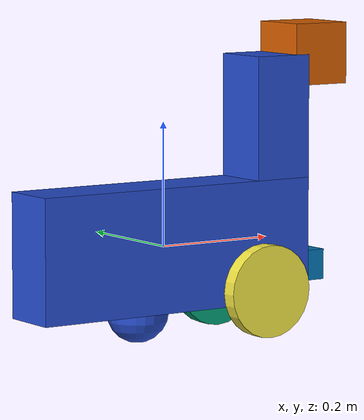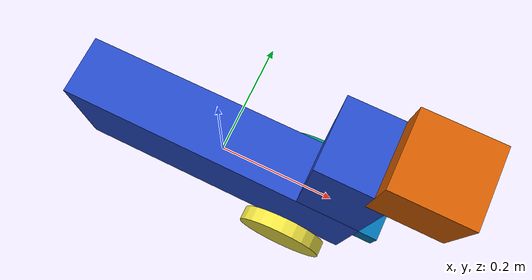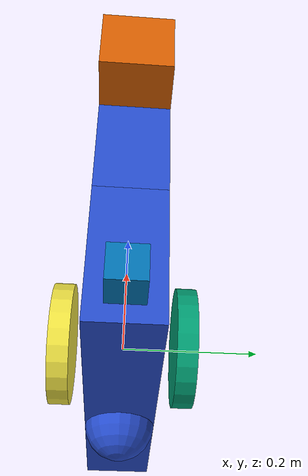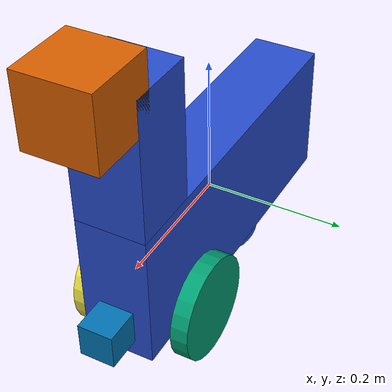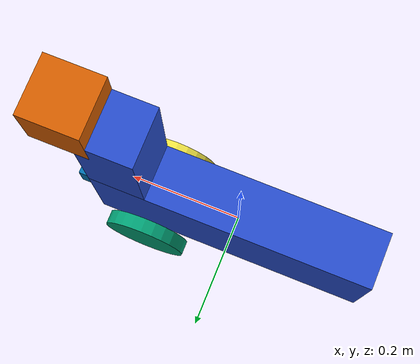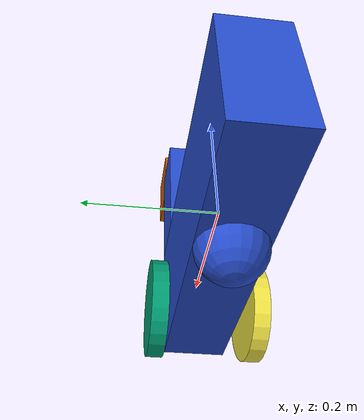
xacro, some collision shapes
<?xml version='1.0'?>

<robot name="my_robot" xmlns:xacro="http://www.ros.org/wiki/xacro">

  <xacro:include filename="$(find my_robot)/urdf/my_robot.gazebo" />

  <link name="robot_footprint"></link>

  <joint name="robot_footprint_joint" type="fixed">
    <origin xyz="0 0 0" rpy="0 0 0" />
    <parent link="robot_footprint"/>
    <child link="chassis" />
  </joint>

  <link name='chassis'>

    <pose>0 0 0.2 0 0 0</pose>

    <inertial>
      <mass value="15.0"/>
      <origin xyz="0.0 0 0" rpy="0 0 0"/>
      <inertia
          ixx="0.1" ixy="0" ixz="0"
          iyy="0.1" iyz="0"
          izz="0.1"
      />
    </inertial>

    <collision name='chassis_collision'>
      <origin xyz="0 0 0" rpy="0 0 0"/>
      <geometry>
        <box size=".5 .1 .2"/>
      </geometry>
    </collision>

    <visual name='chassis_visual'>
      <origin xyz="0 0 0" rpy="0 0 0"/>
      <geometry>
        <box size=".5 .1 .2"/>
      </geometry>
    </visual>

    <collision name='tower_collision'>
      <origin xyz=".2 0 .2" rpy="0 0 0"/>
      <geometry>
        <box size=".1 .1 .2"/>
      </geometry>
    </collision>

    <visual name='tower_visual'>
      <origin xyz=".2 0 .2" rpy="0 0 0"/>
      <geometry>
        <box size=".1 .1 .2"/>
      </geometry>
    </visual>

    <collision name='back_caster_collision'>
      <origin xyz="-0.05 0 -0.1" rpy="0 0 0"/>
      <geometry>
        <sphere radius="0.0499"/>
      </geometry>
    </collision>

    <visual name='back_caster_visual'>
      <origin xyz="-0.05 0 -0.1" rpy="0 0 0"/>
      <geometry>
        <sphere radius="0.05"/>
      </geometry>
    </visual>

  </link>

  <link name='left_wheel'>

    <inertial>
      <mass value="5.0"/>
      <origin xyz="0.0 0 0" rpy="0 1.5707 1.5707"/>
      <inertia
          ixx="0.1" ixy="0" ixz="0"
          iyy="0.1" iyz="0"
          izz="0.1"
      />
    </inertial>

    <collision name='left_wheel_collision'>
      <origin xyz="0 0 0" rpy="0 1.5707 1.5707"/>
      <geometry>
        <cylinder radius=".075" length=".025"/>
      </geometry>
    </collision>

    <visual name='left_wheel_visual'>
      <origin xyz="0 0 0" rpy="0 1.5707 1.5707"/>
      <geometry>
        <cylinder radius=".075" length=".025"/>
      </geometry>
    </visual>

  </link>

  <link name='right_wheel'>

    <inertial>
      <mass value="5.0"/>
      <origin xyz="0.0 0 0" rpy="0 1.5707 1.5707"/>
      <inertia
          ixx="0.1" ixy="0" ixz="0"
          iyy="0.1" iyz="0"
          izz="0.1"
      />
    </inertial>

    <collision name='right_wheel_collision'>
      <origin xyz="0 0 0" rpy="0 1.5707 1.5707"/>
      <geometry>
        <cylinder radius=".075" length=".025"/>
      </geometry>
    </collision>

    <visual name='right_wheel_visual'>
      <origin xyz="0 0 0" rpy=" 0 1.5707 1.5707"/>
      <geometry>
        <cylinder radius=".075" length=".025"/>
      </geometry>
    </visual>

  </link>

  <joint type="continuous" name="left_wheel_hinge">

    <origin xyz="0.15 0.075 -0.075" rpy="0 0 0"/>
    <child link="left_wheel"/>
    <parent link="chassis"/>
    <axis xyz="0 1 0" rpy="0 0 0"/>
    <limit effort="10000" velocity="1000"/>
    <dynamics damping="1.0" friction="1.0"/>

  </joint>

  <joint type="continuous" name="right_wheel_hinge">

    <origin xyz="0.15 -0.075 -.075" rpy="0 0 0"/>
    <child link="right_wheel"/>
    <parent link="chassis"/>
    <axis xyz="0 1 0" rpy="0 0 0"/>
    <limit effort="10000" velocity="1000"/>
    <dynamics damping="1.0" friction="1.0"/>

  </joint>

  <link name='camera'>

    <box_inertia m="0.1" w="0.05" h="0.05" d="0.05"/>

    <inertial>
      <mass value="0.1"/>
      <origin xyz="0 0 0" rpy="0 0 0"/>
      <inertia
          ixx="1e-6" ixy="0" ixz="0"
          iyy="1e-6" iyz="0"
          izz="1e-6"
      />
    </inertial>

    <collision name='camera_collision'>
      <origin xyz="0 0 0" rpy="0 0 0"/>
      <geometry>
        <box size=".05 .05 .05"/>
      </geometry>
    </collision>

    <visual name='camera_visual'>
      <origin xyz="0 0 0" rpy="0 0 0"/>
      <geometry>
        <box size=".05 .05 .05"/>
      </geometry>
    </visual>

  </link>

  <joint type="fixed" name="camera_joint">

    <origin xyz="0.275 0 -.05" rpy="0 0 0"/>
    <child link="camera"/>
    <parent link="chassis"/>
    <axis xyz="0 1 0"/>

  </joint>

  <link name='hokuyo'>

    <inertial>
      <mass value="1e-5"/>
      <origin xyz="0 0 0" rpy="0 0 0"/>
      <inertia
          ixx="1e-6" ixy="0" ixz="0"
          iyy="1e-6" iyz="0"
          izz="1e-6"
      />
    </inertial>

    <collision name='hokuyo_collision'>
      <origin xyz="0 0 0" rpy="0 0 0"/>
      <geometry>
        <box size=".1 .1 .1"/>
      </geometry>
    </collision>

    <visual name='hokuyo_visual'>
      <origin xyz="0 0 0" rpy="0 0 0"/>
      <geometry>
        <mesh filename="package://my_robot/meshes/hokuyo.dae"/>
      </geometry>
    </visual>

  </link>

  <joint type="fixed" name="hokuyo_joint">

    <origin xyz="0.275 0 .3" rpy="0 0 0"/>
    <child link="hokuyo"/>
    <parent link="chassis"/>
    <axis xyz="0 1 0"/>

  </joint>

</robot>
